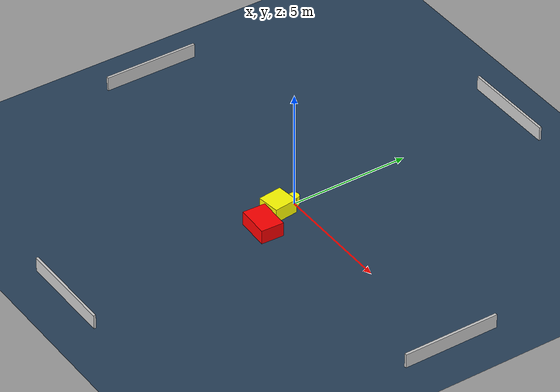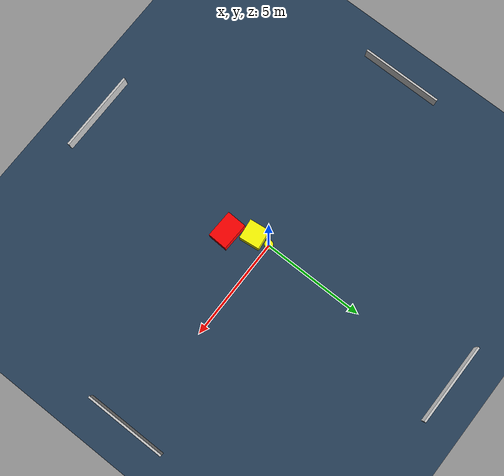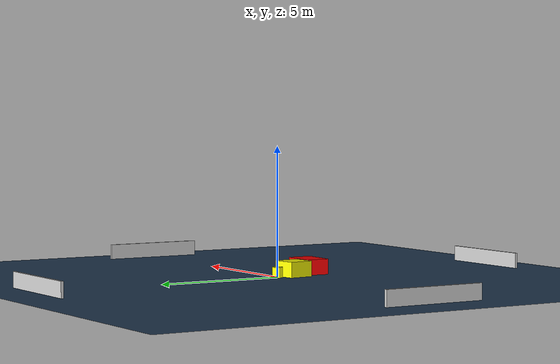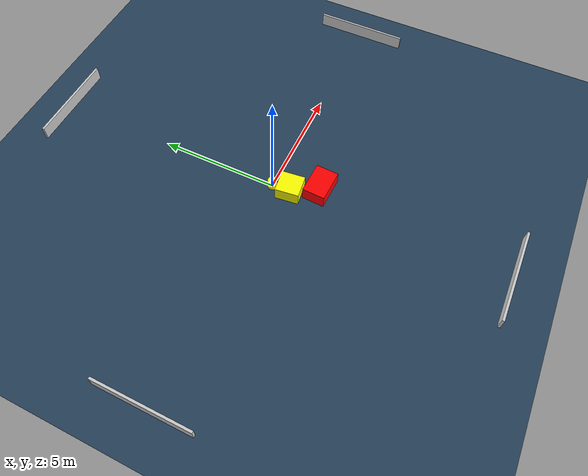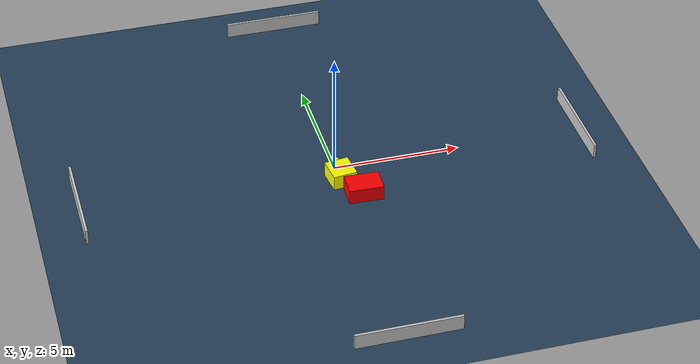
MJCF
<?xml version="1.0" ?>
<mujoco model="generated_environment">
  <option timestep="0.01" integrator="RK4" cone="elliptic"/>
  <default>
    <geom density="1"/>
  </default>
  <asset>
    <texture builtin="gradient" height="3072" name="skybox" rgb1="0.3 0.5 0.7" rgb2="0 0 0" type="skybox" width="512"/>
    <texture builtin="checker" height="300" name="groundplane" rgb1="0.2 0.3 0.4" rgb2="0.1 0.2 0.3" type="2d" width="300"/>
    <material name="groundplane" reflectance="0.2" texrepeat="5 5" texture="groundplane"/>
  </asset>
  <worldbody>
    <light dir="0 0 -1" directional="true" pos="0 0 1.5"/>
    <geom condim="3" friction="0.5 0.005 0.001" material="groundplane" name="floor" pos="0 0 0" size="0 0 0.05" type="plane"/>
    <body name="walls">
      <geom name="wall_1" condim="4" pos="-10.0 0.0 0.3" rgba="0.800000011920929 0.800000011920929 0.800000011920929 1.0" size="0.05 2.0 0.3" type="box"/>
      <geom name="wall_2" condim="4" pos="10.0 0.0 0.3" rgba="0.800000011920929 0.800000011920929 0.800000011920929 1.0" size="0.05 2.0 0.3" type="box"/>
      <geom name="wall_3" condim="4" pos="0.0 -10.0 0.3" rgba="0.800000011920929 0.800000011920929 0.800000011920929 1.0" size="2.0 0.05 0.3" type="box"/>
      <geom name="wall_4" condim="4" pos="0.0 10.0 0.3" rgba="0.800000011920929 0.800000011920929 0.800000011920929 1.0" size="2.0 0.05 0.3" type="box"/>
    </body>
    <body name="robot">
      <joint name="joint_x" type="slide" pos="0 0 0" axis="1 0 0"/>
      <joint name="joint_y" type="slide" pos="0 0 0" axis="0 1 0"/>
      <geom name="robot" type="cylinder" pos="0.0 0.0 0.2" size="0.2 0.2 0.0" mass="5.0" friction="1.0 0.005 0.0001" condim="4" rgba="1.0 1.0 0.0 1.0"/>
    </body>
    <body name="obstacle_1_movable">
      <geom name="obstacle_1_movable" condim="4" pos="0.05467189022553291 -0.7658956002959805 0.3" euler="0 0 6.650438204878464" friction="0.0 0.005 0.001" rgba="1.0 1.0 0.0 1.0" size="0.4803653179682733 0.49724717681369035 0.3" type="box" mass="0.1"/>
      <joint type="free"/>
    </body>
    <body name="obstacle_2_static">
      <geom name="obstacle_2_static" condim="4" pos="0.6701875564712686 -1.839692431365652 0.3" euler="0 0 357.6570674693112" friction="0.0 0.005 0.001" rgba="1.0 0.0 0.0 1.0" size="0.6758494543439142 0.4774491147137262 0.3" type="box"/>
    </body>
  </worldbody>
  <actuator>
    <motor name="actuator_x" joint="joint_x" gear="1" ctrlrange="-1 1"/>
    <motor name="actuator_y" joint="joint_y" gear="1" ctrlrange="-1 1"/>
  </actuator>
</mujoco>
